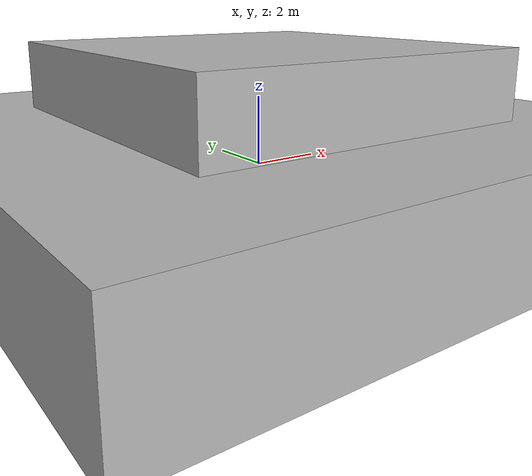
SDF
<?xml version="1.0" ?>
<sdf version="1.4">

  <world name="default">
    <include>
      <uri>model://ground_plane</uri>
    </include>

    <include>
      <uri>model://sun</uri>
    </include>

    <model name="environment_model">
     <link name="environment_model_link">
       <pose>-0 0 0 0 0 0</pose>
       <collision name="environment_model_collision">
         <geometry>
           <box>
             <size>100 100 3</size>
           </box>
         </geometry>
       </collision>
       <visual name="environment_model_visual" cast_shadows="true">
         <geometry>
           <box>
             <size>100 100 3</size>
           </box>
         </geometry>
       </visual>
     </link>
     <static>true</static>
   </model>

   <model name="environment_model2">
    <link name="environment_model_link2">
      <pose>-0 0 0 0 0 0</pose>
      <collision name="environment_model_collision2">
        <geometry>
          <box>
            <size>10 10 7</size>
          </box>
        </geometry>
      </collision>
      <visual name="environment_model_visual2" cast_shadows="true">
        <geometry>
          <box>
            <size>10 10 7</size>
          </box>
        </geometry>
      </visual>
    </link>
    <static>true</static>
  </model>

    <gui fullscreen='0'>
      <camera name='user_camera'>
        <pose>4.927360 -4.376610 3.740080 0.000000 0.275643 2.356190</pose>
        <view_controller>orbit</view_controller>
      </camera>
    </gui>

  </world>
</sdf>
